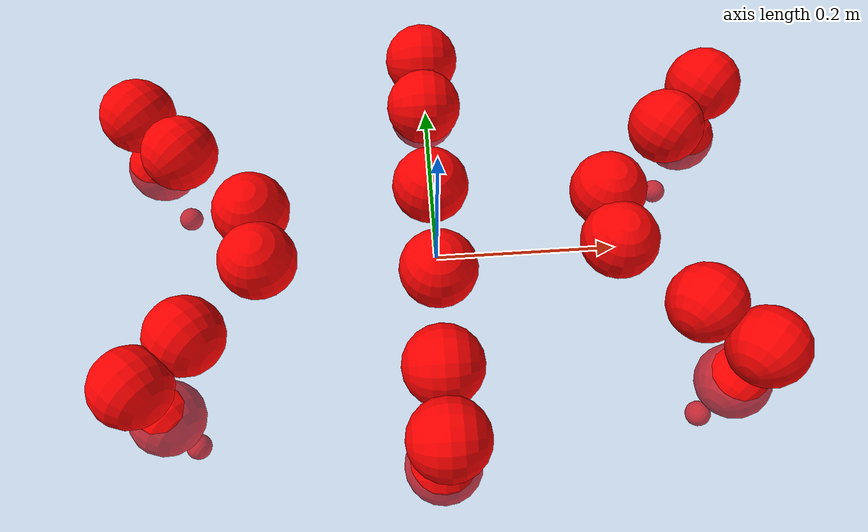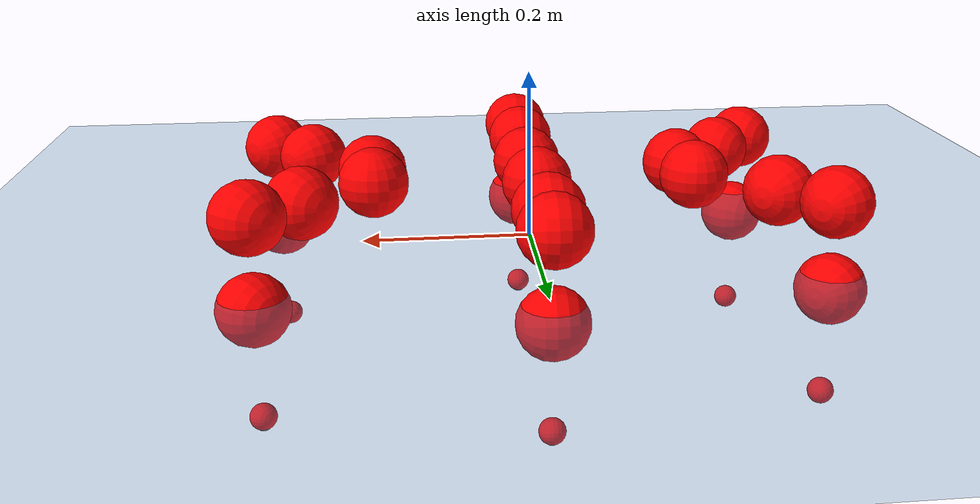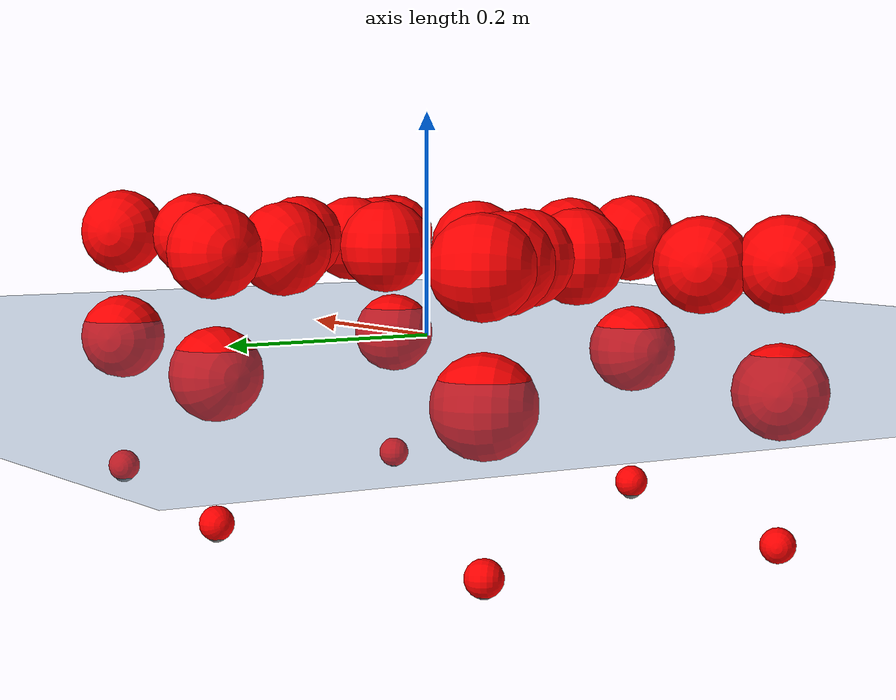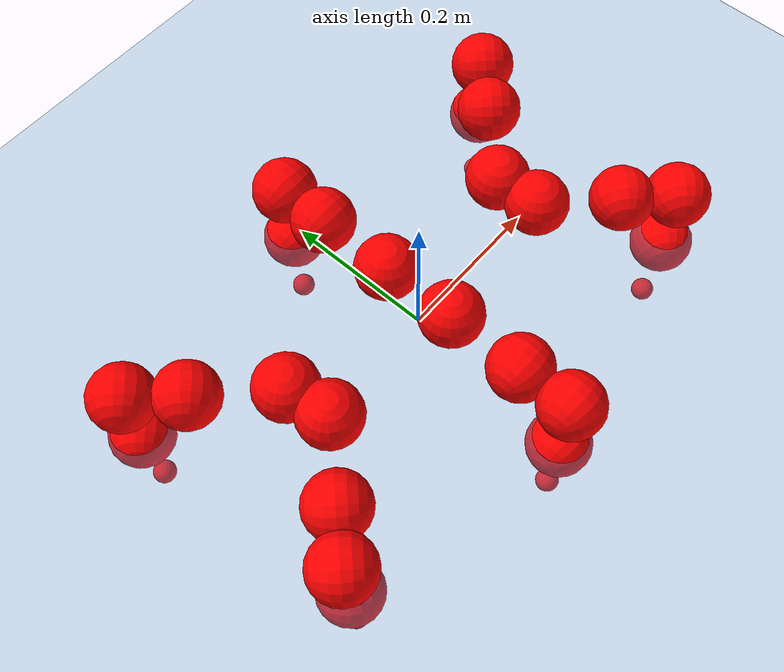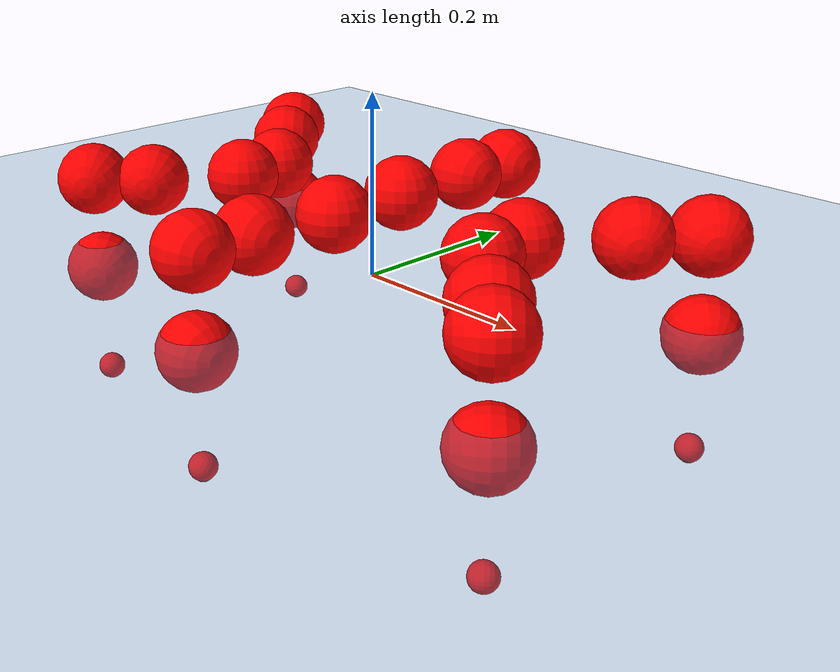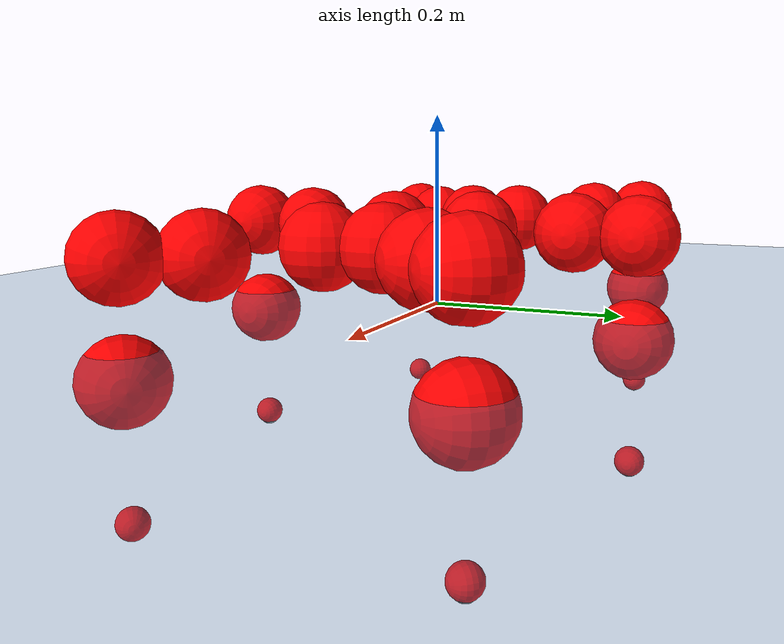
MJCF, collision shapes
<mujoco model="Golem">
  <compiler angle="radian" assetdir="assets" balanceinertia="true" inertiafromgeom="false"/>

  <option timestep="0.005" density="1.2" viscosity="2e-05"/>

  <size nkey="1"/>

  <visual>
    <quality shadowsize="8192"/>
    <map shadowclip="0.5"/>
  </visual>

  <default>
    <default class="/">
      <joint armature="0.01" damping="0.01" frictionloss="0.01"/>
      <geom contype="0" conaffinity="0" group="1" solref="-1000 -80"/>
      <site size="0.01 0.005 0.005" group="5"/>
      <general forcelimited="true" biastype="affine" gainprm="25" biasprm="0 -25 -0.5"/>
      <default class="visual">
        <geom type="mesh" group="2"/>
      </default>
      <default class="collision">
        <geom group="3"/>
      </default>
      <default class="foot">
        <geom size="0.01 0 0" condim="6" group="4" priority="1" solimp="0.015 1 0.01"/>
      </default>
      <default class="reward_collision_sphere">
        <geom group="5" rgba="1 0 0 1"/>
      </default>
    </default>
  </default>

  <asset>
    <texture type="skybox" colorspace="auto" name="//unnamed_texture_0" builtin="gradient" rgb1="0.95 0.95 0.95" rgb2="0.95 0.95 0.95" width="100" height="600"/>
    <texture type="2d" colorspace="auto" name="texplane" builtin="checker" rgb1="0.345 0.575 0.748" rgb2="0.345 0.575 0.748" markrgb="1 1 1" width="512" height="512"/>
    <material name="MatPlane" class="/" texture="texplane" texuniform="true" texrepeat="2 2" specular="0.9"/>
    <mesh name="body" class="/" file="body.stl" scale="0.001 0.001 0.001"/>
    <mesh name="coxa" class="/" file="coxa.stl" scale="0.001 0.001 0.001"/>
    <mesh name="femur" class="/" file="femur.stl" scale="0.001 0.001 0.001"/>
    <mesh name="tibia" class="/" file="tibia.stl" scale="0.001 0.001 0.001"/>
    <mesh name="tarsus" class="/" file="tarsus.stl" scale="0.001 0.001 0.001"/>
  </asset>

  <worldbody>
    <geom name="floor" class="/" size="100 100 0.125" type="plane" group="0" material="MatPlane"/>
    <light name="toplight_shadow" class="/" pos="0 0 5" dir="0.0990148 0.0990148 -0.990148" type="directional" ambient="0.04 0.04 0.04" diffuse="0.55 0.55 0.55" specular="0.12 0.12 0.12"/>
    <light name="toplight_fill" class="/" pos="0 0 5" dir="0.0990148 0.0990148 -0.990148" type="directional" castshadow="false" ambient="0.04 0.04 0.04" diffuse="0.3 0.3 0.3" specular="0.08 0.08 0.08"/>
    <body name="trunk" pos="-0.00276485 -0.000514237 0.000746657" quat="1 0.000195872 2.85938e-06 0.000323011">
      <inertial pos="0.00307842 -0.000325015 -0.00138978" quat="0.999956 0.00354685 -0.00490308 0.00714437" mass="3.92016" diaginertia="0.023883 0.00112295 0.0269203"/>
      <joint name="//unnamed_joint_0" type="free"/>
      <geom name="//unnamed_geom_1" class="/" pos="0 0 0.0776015" quat="1 0 0 0" type="mesh" rgba="0.9 0.9 0.9 1" mesh="body"/>
      <site name="imu" class="/" pos="0.152289 0.000496619 0.132073" size="0.0101457"/>
      <camera name="track" class="/" pos="0 -1.28709 0" quat="0.707107 0.707107 0 0" mode="trackcom"/>
      <camera name="ego_camera" class="/" pos="0.154395 0 0.121252" quat="-0.5 -0.5 0.5 0.5"/>
      <body name="coxa_RR" pos="-0.207254 -0.0544154 0.0774394" quat="0.382547 0.000122018 -0.00016678 -0.923936">
        <inertial pos="0.000638028 0.000542896 0.000356619" quat="0.999973 0.00257352 -0.00360641 0.00587491" mass="0.2141" diaginertia="0.0235448 0.0011365 0.0276269"/>
        <joint name="coxa_joint_RR" class="/" pos="0 0 0" axis="-0.00992278 0.00533645 -0.999937" stiffness="0.00271872" range="-3.13506 3.0959" armature="0.00879869" damping="0.00470357" frictionloss="0.0103194"/>
        <geom name="//unnamed_geom_2" class="/" type="mesh" rgba="0.2 0.2 0.2 1" mesh="coxa"/>
        <geom name="//unnamed_geom_3" class="reward_collision_sphere" size="0.040583" pos="-0.0356296 0 0"/>
        <body name="femur_RR" pos="0.0672066 0.0036681 -0.00579535" quat="0.500266 -0.499351 0.499828 0.500554">
          <inertial pos="-0.00199451 0.00231634 -0.00270002" quat="0.999998 0.000599212 0.00188429 -0.000183679" mass="0.211839" diaginertia="0.0238574 0.00109791 0.0261714"/>
          <joint name="femur_joint_RR" class="/" pos="0 0 0" axis="-0.000166601 0.000893945 -1" range="-3.10013 3.13683" armature="0.00911632" damping="0.0212619" frictionloss="0.0111389"/>
          <geom name="//unnamed_geom_4" class="/" type="mesh" rgba="0.9 0.9 0.9 1" mesh="femur"/>
          <geom name="//unnamed_geom_5" class="reward_collision_sphere" size="0.040583"/>
          <body name="tibia_RR" pos="-0.00137414 -0.0676796 0.00222545" quat="0.000301813 0.999999 0.0011833 -8.58495e-05">
            <inertial pos="-0.000695999 -0.00209635 0.000206972" quat="0.999965 0.00746994 -0.00264767 0.00262095" mass="0.209365" diaginertia="0.0228386 0.00109196 0.0256652"/>
            <joint name="tibia_joint_RR" class="/" pos="0 0 0" axis="0.000793822 -0.0128343 0.999917" stiffness="0.0103639" range="-3.13155 3.08338" armature="0.00932662" damping="0.0019637" frictionloss="0.0101223"/>
            <geom name="//unnamed_geom_6" class="/" type="mesh" rgba="0.2 0.2 0.2 1" mesh="tibia"/>
            <geom name="//unnamed_geom_7" class="reward_collision_sphere" size="0.040583"/>
            <body name="tarsus_RR" pos="0.105618 -0.00236427 -0.00318419" quat="1 -0.000808109 0.000382145 -0.000338146">
              <inertial pos="0.0733752 0.000479977 -0.00173971" quat="0.494245 0.50601 0.492417 0.507149" mass="0.209687" diaginertia="0.0242167 0.00115601 0.0267081"/>
              <joint name="tarsus_joint_RR" class="/" pos="0 0 0" axis="0.00450944 -0.00247198 0.999987" stiffness="0.0105447" range="-3.12801 3.14202" armature="0.0111292" damping="0.0147012" frictionloss="0.0108791"/>
              <geom name="//unnamed_geom_8" class="/" type="mesh" rgba="0.9 0.9 0.9 1" mesh="tarsus"/>
              <geom name="foot_1" class="foot" size="0.0092158" pos="0.133017 0 0" quat="0 -0.707107 0 0.707107"/>
              <geom name="//unnamed_geom_10" class="reward_collision_sphere" size="0.040583"/>
              <geom name="//unnamed_geom_11" class="reward_collision_sphere" size="0.0152186" pos="0.127673 0 0"/>
              <site name="foot_1" class="foot" pos="0.133017 0 0" quat="0 -0.707107 0 0.707107" size="0.0101457"/>
            </body>
          </body>
        </body>
      </body>
      <body name="coxa_RM" pos="0.000851458 -0.0866971 0.0789933" quat="0.707212 0.000549322 -4.38057e-05 -0.707001">
        <inertial pos="-0.000614916 0.000191255 -0.00236723" quat="0.999996 0.000868517 -0.00239455 -0.0013949" mass="0.202514" diaginertia="0.0237521 0.00107797 0.024868"/>
        <joint name="coxa_joint_RM" class="/" pos="0 0 0" axis="0.00160748 0.00316887 -0.999994" range="-3.11417 3.14325" armature="0.00872399" damping="0.0239075" frictionloss="0.0102705"/>
        <geom name="//unnamed_geom_12" class="/" type="mesh" rgba="0.2 0.2 0.2 1" mesh="coxa"/>
        <geom name="//unnamed_geom_13" class="reward_collision_sphere" size="0.040583" pos="-0.0356296 0 0"/>
        <body name="femur_RM" pos="0.0678012 -0.00286403 0.00181421" quat="0.500094 -0.50009 0.499823 0.499993">
          <inertial pos="0.00249536 -0.00299691 0.00248729" quat="0.999996 0.00219848 0.00126363 -0.00143064" mass="0.213557" diaginertia="0.0240326 0.00110093 0.0267569"/>
          <joint name="femur_joint_RM" class="/" pos="0 0 0" axis="0.00428554 0.000468699 -0.999991" stiffness="0.00437584" range="-3.12116 3.1452" armature="0.0104381" damping="0.0067665" frictionloss="0.0087649"/>
          <geom name="//unnamed_geom_14" class="/" type="mesh" rgba="0.9 0.9 0.9 1" mesh="femur"/>
          <geom name="//unnamed_geom_15" class="reward_collision_sphere" size="0.040583"/>
          <body name="tibia_RM" pos="-0.00112382 -0.0712214 -0.000216085" quat="4.51725e-05 1 -0.000388108 -0.000263149">
            <inertial pos="-0.00304665 -0.00180439 -0.000829748" quat="0.999964 0.00671623 -0.000369643 0.00508592" mass="0.206629" diaginertia="0.0231692 0.00109951 0.0268603"/>
            <joint name="tibia_joint_RM" class="/" pos="0 0 0" axis="-0.0120372 0.00291292 0.999923" range="-3.09928 3.17861" armature="0.0114906" damping="0.0108536" frictionloss="0.00979264"/>
            <geom name="//unnamed_geom_16" class="/" type="mesh" rgba="0.2 0.2 0.2 1" mesh="tibia"/>
            <geom name="//unnamed_geom_17" class="reward_collision_sphere" size="0.040583"/>
            <body name="tarsus_RM" pos="0.105087 0.000135931 0.00327513" quat="1 -0.000391745 -0.000247542 0.000785454">
              <inertial pos="0.0740466 -0.000754883 0.00308552" quat="0.500623 0.500136 0.50007 0.49917" mass="0.207196" diaginertia="0.0231812 0.00109885 0.0247118"/>
              <joint name="tarsus_joint_RM" class="/" pos="0 0 0" axis="-0.0132896 -0.00305342 0.999907" range="-3.12045 3.11113" armature="0.0114823" damping="0.0169455" frictionloss="0.0101556"/>
              <geom name="//unnamed_geom_18" class="/" type="mesh" rgba="0.9 0.9 0.9 1" mesh="tarsus"/>
              <geom name="foot_2" class="foot" size="0.0112048" pos="0.133017 0 0" quat="0 -0.707107 0 0.707107"/>
              <geom name="//unnamed_geom_20" class="reward_collision_sphere" size="0.040583"/>
              <geom name="//unnamed_geom_21" class="reward_collision_sphere" size="0.0152186" pos="0.127673 0 0"/>
              <site name="foot_2" class="foot" pos="0.133017 0 0" quat="0 -0.707107 0 0.707107" size="0.0101457"/>
            </body>
          </body>
        </body>
      </body>
      <body name="coxa_RF" pos="0.213773 -0.0564867 0.0792285" quat="0.923968 -0.000224734 -0.00100301 -0.382468">
        <inertial pos="-0.000349875 0.00189917 0.00118605" quat="0.999917 0.000290772 0.00295467 -0.0124996" mass="0.210002" diaginertia="0.0223988 0.00110436 0.0248824"/>
        <joint name="coxa_joint_RF" class="/" pos="0 0 0" axis="0.00892666 -0.000113049 -0.99996" range="-3.1888 3.14341" armature="0.00939244" damping="0.0210523" frictionloss="0.0113494"/>
        <geom name="//unnamed_geom_22" class="/" type="mesh" rgba="0.2 0.2 0.2 1" mesh="coxa"/>
        <geom name="//unnamed_geom_23" class="reward_collision_sphere" size="0.040583" pos="-0.0356296 0 0"/>
        <body name="femur_RF" pos="0.0698007 0.000415443 -0.00271975" quat="0.500149 -0.500035 0.500064 0.499751">
          <inertial pos="-0.000660889 -0.00296198 0.00038843" quat="0.999998 -0.00130549 0.000396987 0.00154682" mass="0.210536" diaginertia="0.0239706 0.00109088 0.0258658"/>
          <joint name="femur_joint_RF" class="/" pos="0 0 0" axis="-0.000419708 -0.00212311 -0.999998" stiffness="0.00896341" range="-3.08467 3.14396" armature="0.0109982" damping="0" frictionloss="0.0107892"/>
          <geom name="//unnamed_geom_24" class="/" type="mesh" rgba="0.9 0.9 0.9 1" mesh="femur"/>
          <geom name="//unnamed_geom_25" class="reward_collision_sphere" size="0.040583"/>
          <body name="tibia_RF" pos="-0.000262492 -0.069764 -0.000854485" quat="1.72515e-05 1 0.000289208 -0.000109557">
            <inertial pos="0.000219213 -0.00149826 -0.000304189" quat="0.999994 0.00199979 -0.00274876 -0.000809752" mass="0.202628" diaginertia="0.0225419 0.00107286 0.0253802"/>
            <joint name="tibia_joint_RF" class="/" pos="0 0 0" axis="0.00973403 -0.00905512 0.999912" range="-3.09338 3.12769" armature="0.00984672" damping="0.000551296" frictionloss="0.0114246"/>
            <geom name="//unnamed_geom_26" class="/" type="mesh" rgba="0.2 0.2 0.2 1" mesh="tibia"/>
            <geom name="//unnamed_geom_27" class="reward_collision_sphere" size="0.040583"/>
            <body name="tarsus_RF" pos="0.104829 0.000147058 -0.000220011" quat="1 -4.18377e-05 -1.59405e-05 -0.00094703">
              <inertial pos="0.070963 -0.00258078 0.00103561" quat="0.496331 0.506612 0.501382 0.495596" mass="0.205825" diaginertia="0.0228788 0.0010927 0.0255883"/>
              <joint name="tarsus_joint_RF" class="/" pos="0 0 0" axis="0.0117801 0.00613901 0.999912" range="-3.17908 3.14619" armature="0.0104955" damping="0" frictionloss="0.00975861"/>
              <geom name="//unnamed_geom_28" class="/" type="mesh" rgba="0.9 0.9 0.9 1" mesh="tarsus"/>
              <geom name="foot_3" class="foot" size="0.010304" pos="0.133017 0 0" quat="0 -0.707107 0 0.707107"/>
              <geom name="//unnamed_geom_30" class="reward_collision_sphere" size="0.040583"/>
              <geom name="//unnamed_geom_31" class="reward_collision_sphere" size="0.0152186" pos="0.127673 0 0"/>
              <site name="foot_3" class="foot" pos="0.133017 0 0" quat="0 -0.707107 0 0.707107" size="0.0101457"/>
            </body>
          </body>
        </body>
      </body>
      <body name="coxa_LR" pos="-0.215464 0.0545698 0.0780343" quat="0.383282 -0.000785414 0.000202915 0.923631">
        <inertial pos="0.00299363 -0.0004162 0.000822904" quat="0.999996 0.00263469 0.000182303 -0.000581631" mass="0.203868" diaginertia="0.0239473 0.0011296 0.0262603"/>
        <joint name="coxa_joint_LR" class="/" pos="0 0 0" axis="0.0193994 0.00239631 -0.999809" stiffness="0.0117711" range="-3.12203 3.19326" armature="0.0108698" damping="0.0042648" frictionloss="0.0114886"/>
        <geom name="//unnamed_geom_32" class="/" type="mesh" rgba="0.2 0.2 0.2 1" mesh="coxa"/>
        <geom name="//unnamed_geom_33" class="reward_collision_sphere" size="0.040583" pos="-0.0356296 0 0"/>
        <body name="femur_LR" pos="0.0742241 0.00196525 0.00150197" quat="0.499829 -0.500744 0.49969 0.499736">
          <inertial pos="-0.000726141 0.000320392 -0.000294714" quat="1 -4.83349e-05 -0.000776436 -0.000227985" mass="0.215344" diaginertia="0.0252408 0.00114576 0.0262256"/>
          <joint name="femur_joint_LR" class="/" pos="0 0 0" axis="0.00129973 0.00352753 0.999993" range="-3.17898 3.10689" armature="0.00906768" damping="0" frictionloss="0.00969104"/>
          <geom name="//unnamed_geom_34" class="/" type="mesh" rgba="0.9 0.9 0.9 1" mesh="femur"/>
          <geom name="//unnamed_geom_35" class="reward_collision_sphere" size="0.040583"/>
          <body name="tibia_LR" pos="-0.00108747 -0.0714601 -0.00216565" quat="-0.000165002 1 -0.000177911 6.92599e-05">
            <inertial pos="0.000353459 0.000317835 0.000350922" quat="0.999909 -0.0104543 -0.0084734 -0.000478207" mass="0.19996" diaginertia="0.0223643 0.00111292 0.0258319"/>
            <joint name="tibia_joint_LR" class="/" pos="0 0 0" axis="-0.000397506 -8.04793e-05 -1" stiffness="0.00467773" range="-3.14178 3.13284" armature="0.0103204" damping="0.01855" frictionloss="0.0111621"/>
            <geom name="//unnamed_geom_36" class="/" type="mesh" rgba="0.2 0.2 0.2 1" mesh="tibia"/>
            <geom name="//unnamed_geom_37" class="reward_collision_sphere" size="0.040583"/>
            <body name="tarsus_LR" pos="0.102499 0.00024928 -0.00197682" quat="0.999999 0.000333254 0.000865482 0.000544446">
              <inertial pos="0.0674948 0.00328241 -0.00146794" quat="0.501049 0.498597 0.502621 0.497718" mass="0.20254" diaginertia="0.0232983 0.0011358 0.0267898"/>
              <joint name="tarsus_joint_LR" class="/" pos="0 0 0" axis="-0.0015357 0.000175507 -0.999999" range="-3.17124 3.13517" armature="0.00965916" damping="0.0317402" frictionloss="0.0105783"/>
              <geom name="//unnamed_geom_38" class="/" type="mesh" rgba="0.9 0.9 0.9 1" mesh="tarsus"/>
              <geom name="foot_4" class="foot" size="0.0104314" pos="0.133017 0 0" quat="0.707107 0 -0.707107 0"/>
              <geom name="//unnamed_geom_40" class="reward_collision_sphere" size="0.040583"/>
              <geom name="//unnamed_geom_41" class="reward_collision_sphere" size="0.0152186" pos="0.127673 0 0"/>
              <site name="foot_4" class="foot" pos="0.133017 0 0" quat="0.707107 0 -0.707107 0" size="0.0101457"/>
            </body>
          </body>
        </body>
      </body>
      <body name="coxa_LM" pos="-0.00104217 0.0819457 0.080778" quat="0.70693 7.84784e-06 -0.000494132 0.707283">
        <inertial pos="0.00259123 0.00275829 0.00315807" quat="0.999911 -0.0108494 -0.00596879 -0.0050489" mass="0.207733" diaginertia="0.0240836 0.00107174 0.0271049"/>
        <joint name="coxa_joint_LM" class="/" pos="0 0 0" axis="7.49873e-06 4.35818e-06 -1" range="-3.08316 3.11479" armature="0.0102139" damping="0.00656653" frictionloss="0.0105313"/>
        <geom name="//unnamed_geom_42" class="/" type="mesh" rgba="0.2 0.2 0.2 1" mesh="coxa"/>
        <geom name="//unnamed_geom_43" class="reward_collision_sphere" size="0.040583" pos="-0.0356296 0 0"/>
        <body name="femur_LM" pos="0.0668833 0.000589556 0.000341866" quat="0.499762 -0.500247 0.499974 0.500017">
          <inertial pos="0.00172089 -0.00118442 -0.00203386" quat="0.999989 -0.00223658 -0.000259804 0.00419239" mass="0.211308" diaginertia="0.0234833 0.00112532 0.0270894"/>
          <joint name="femur_joint_LM" class="/" pos="0 0 0" axis="0.00768886 -0.000667344 0.99997" range="-3.13737 3.13962" armature="0.0113512" damping="0.0146618" frictionloss="0.0111623"/>
          <geom name="//unnamed_geom_44" class="/" type="mesh" rgba="0.9 0.9 0.9 1" mesh="femur"/>
          <geom name="//unnamed_geom_45" class="reward_collision_sphere" size="0.040583"/>
          <body name="tibia_LM" pos="0.000584602 -0.0661728 -0.00155206" quat="-0.000721002 0.999999 -0.000750355 -0.000833638">
            <inertial pos="0.00219941 0.00225516 -0.00102172" quat="0.999909 0.0108916 0.00674328 0.00420289" mass="0.222762" diaginertia="0.0246207 0.00115473 0.0278502"/>
            <joint name="tibia_joint_LM" class="/" pos="0 0 0" axis="-0.00891294 0.0059385 -0.999943" stiffness="0.0105426" range="-3.12458 3.13126" armature="0.0100221" damping="0.011504" frictionloss="0.0106378"/>
            <geom name="//unnamed_geom_46" class="/" type="mesh" rgba="0.2 0.2 0.2 1" mesh="tibia"/>
            <geom name="//unnamed_geom_47" class="reward_collision_sphere" size="0.040583"/>
            <body name="tarsus_LM" pos="0.103863 -0.00191073 0.00069698" quat="1 -6.01608e-05 -1.63372e-05 8.5486e-05">
              <inertial pos="0.0711173 0.000935452 0.00119518" quat="0.495419 0.504571 0.508365 0.49146" mass="0.202326" diaginertia="0.0240132 0.00112411 0.02647"/>
              <joint name="tarsus_joint_LM" class="/" pos="0 0 0" axis="-0.000550585 -3.55981e-05 -1" range="-3.19328 3.11848" armature="0.00998085" damping="0.0184356" frictionloss="0.0102236"/>
              <geom name="//unnamed_geom_48" class="/" type="mesh" rgba="0.9 0.9 0.9 1" mesh="tarsus"/>
              <geom name="foot_5" class="foot" size="0.0107939" pos="0.133017 0 0" quat="0.707107 0 -0.707107 0"/>
              <geom name="//unnamed_geom_50" class="reward_collision_sphere" size="0.040583"/>
              <geom name="//unnamed_geom_51" class="reward_collision_sphere" size="0.0152186" pos="0.127673 0 0"/>
              <site name="foot_5" class="foot" pos="0.133017 0 0" quat="0.707107 0 -0.707107 0" size="0.0101457"/>
            </body>
          </body>
        </body>
      </body>
      <body name="coxa_LF" pos="0.21116 0.0532375 0.0805315" quat="0.923908 -0.000110524 -8.87039e-05 0.382615">
        <inertial pos="0.000125011 -0.000623589 0.00140935" quat="0.999936 0.000173032 -0.00770496 -0.00822239" mass="0.201821" diaginertia="0.0234718 0.0010937 0.0251549"/>
        <joint name="coxa_joint_LF" class="/" pos="0 0 0" axis="0.00517843 -0.00240305 -0.999984" range="-3.11033 3.14646" armature="0.01032" damping="0.0319461" frictionloss="0.00960732"/>
        <geom name="//unnamed_geom_52" class="/" type="mesh" rgba="0.2 0.2 0.2 1" mesh="coxa"/>
        <geom name="//unnamed_geom_53" class="reward_collision_sphere" size="0.040583" pos="-0.0356296 0 0"/>
        <body name="femur_LF" pos="0.0712405 -0.000589137 0.00238915" quat="0.500302 -0.499659 0.499064 0.500974">
          <inertial pos="0.000136708 -0.000533919 -7.7168e-05" quat="0.999949 -0.00288289 0.00810097 -0.00521837" mass="0.202782" diaginertia="0.0231201 0.00107077 0.0262642"/>
          <joint name="femur_joint_LF" class="/" pos="0 0 0" axis="0.00889677 -0.00207965 0.999958" range="-3.12983 3.13182" armature="0.010391" damping="0" frictionloss="0.010395"/>
          <geom name="//unnamed_geom_54" class="/" type="mesh" rgba="0.9 0.9 0.9 1" mesh="femur"/>
          <geom name="//unnamed_geom_55" class="reward_collision_sphere" size="0.040583"/>
          <body name="tibia_LF" pos="-0.00277704 -0.072848 0.000554072" quat="-3.01608e-05 1 0.000263602 0.000225961">
            <inertial pos="0.0015012 -0.00275846 -0.00076087" quat="0.999998 0.000153831 0.00210959 0.000278891" mass="0.206682" diaginertia="0.0246904 0.00109666 0.0261411"/>
            <joint name="tibia_joint_LF" class="/" pos="0 0 0" axis="0.00145748 -0.00036477 -0.999999" range="-3.17542 3.19371" armature="0.00985776" damping="0.00144792" frictionloss="0.0101595"/>
            <geom name="//unnamed_geom_56" class="/" type="mesh" rgba="0.2 0.2 0.2 1" mesh="tibia"/>
            <geom name="//unnamed_geom_57" class="reward_collision_sphere" size="0.040583"/>
            <body name="tarsus_LF" pos="0.103068 0.00157288 0.001207" quat="0.999999 -0.00135446 -5.49201e-05 0.000226746">
              <inertial pos="0.072258 -0.00180589 -0.00116577" quat="0.499472 0.50117 0.499546 0.499809" mass="0.198075" diaginertia="0.0223762 0.00104771 0.0254071"/>
              <joint name="tarsus_joint_LF" class="/" pos="0 0 0" axis="0.00329057 -0.000634523 -0.999994" stiffness="0.00318334" range="-3.14044 3.11724" armature="0.0103442" damping="0.0313938" frictionloss="0.00940599"/>
              <geom name="//unnamed_geom_58" class="/" type="mesh" rgba="0.9 0.9 0.9 1" mesh="tarsus"/>
              <geom name="foot_6" class="foot" size="0.0111697" pos="0.133017 0 0" quat="0.707107 0 -0.707107 0"/>
              <geom name="//unnamed_geom_60" class="reward_collision_sphere" size="0.040583"/>
              <geom name="//unnamed_geom_61" class="reward_collision_sphere" size="0.0152186" pos="0.127673 0 0"/>
              <site name="foot_6" class="foot" pos="0.133017 0 0" quat="0.707107 0 -0.707107 0" size="0.0101457"/>
            </body>
          </body>
        </body>
      </body>
    </body>
  </worldbody>

  <contact>
    <pair class="/" geom1="floor" geom2="foot_1" name="//unnamed_contact_0"/>
    <pair class="/" geom1="floor" geom2="foot_2" name="//unnamed_contact_1"/>
    <pair class="/" geom1="floor" geom2="foot_3" name="//unnamed_contact_2"/>
    <pair class="/" geom1="floor" geom2="foot_4" name="//unnamed_contact_3"/>
    <pair class="/" geom1="floor" geom2="foot_5" name="//unnamed_contact_4"/>
    <pair class="/" geom1="floor" geom2="foot_6" name="//unnamed_contact_5"/>
  </contact>

  <actuator>
    <general name="coxa_joint_RR" class="/" joint="coxa_joint_RR" forcerange="-8.05878 8.05878" gainprm="24.6399" biasprm="0 -24.6399 -0.531137"/>
    <general name="femur_joint_RR" class="/" joint="femur_joint_RR" forcerange="-7.88457 7.88457" gainprm="24.6399" biasprm="0 -24.6399 -0.531137"/>
    <general name="tibia_joint_RR" class="/" joint="tibia_joint_RR" forcerange="-6.98845 6.98845" gainprm="24.6399" biasprm="0 -24.6399 -0.531137"/>
    <general name="tarsus_joint_RR" class="/" joint="tarsus_joint_RR" forcerange="-7.10999 7.10999" gainprm="24.6399" biasprm="0 -24.6399 -0.531137"/>
    <general name="coxa_joint_RM" class="/" joint="coxa_joint_RM" forcerange="-7.43465 7.43465" gainprm="24.6399" biasprm="0 -24.6399 -0.531137"/>
    <general name="femur_joint_RM" class="/" joint="femur_joint_RM" forcerange="-7.76182 7.76182" gainprm="24.6399" biasprm="0 -24.6399 -0.531137"/>
    <general name="tibia_joint_RM" class="/" joint="tibia_joint_RM" forcerange="-7.62299 7.62299" gainprm="24.6399" biasprm="0 -24.6399 -0.531137"/>
    <general name="tarsus_joint_RM" class="/" joint="tarsus_joint_RM" forcerange="-7.62242 7.62242" gainprm="24.6399" biasprm="0 -24.6399 -0.531137"/>
    <general name="coxa_joint_RF" class="/" joint="coxa_joint_RF" forcerange="-7.3857 7.3857" gainprm="24.6399" biasprm="0 -24.6399 -0.531137"/>
    <general name="femur_joint_RF" class="/" joint="femur_joint_RF" forcerange="-6.94244 6.94244" gainprm="24.6399" biasprm="0 -24.6399 -0.531137"/>
    <general name="tibia_joint_RF" class="/" joint="tibia_joint_RF" forcerange="-7.31402 7.31402" gainprm="24.6399" biasprm="0 -24.6399 -0.531137"/>
    <general name="tarsus_joint_RF" class="/" joint="tarsus_joint_RF" forcerange="-7.4719 7.4719" gainprm="24.6399" biasprm="0 -24.6399 -0.531137"/>
    <general name="coxa_joint_LR" class="/" joint="coxa_joint_LR" forcerange="-7.53666 7.53666" gainprm="24.6399" biasprm="0 -24.6399 -0.531137"/>
    <general name="femur_joint_LR" class="/" joint="femur_joint_LR" forcerange="-7.17339 7.17339" gainprm="24.6399" biasprm="0 -24.6399 -0.531137"/>
    <general name="tibia_joint_LR" class="/" joint="tibia_joint_LR" forcerange="-7.0342 7.0342" gainprm="24.6399" biasprm="0 -24.6399 -0.531137"/>
    <general name="tarsus_joint_LR" class="/" joint="tarsus_joint_LR" forcerange="-7.31363 7.31363" gainprm="24.6399" biasprm="0 -24.6399 -0.531137"/>
    <general name="coxa_joint_LM" class="/" joint="coxa_joint_LM" forcerange="-7.20727 7.20727" gainprm="24.6399" biasprm="0 -24.6399 -0.531137"/>
    <general name="femur_joint_LM" class="/" joint="femur_joint_LM" forcerange="-7.35232 7.35232" gainprm="24.6399" biasprm="0 -24.6399 -0.531137"/>
    <general name="tibia_joint_LM" class="/" joint="tibia_joint_LM" forcerange="-7.33541 7.33541" gainprm="24.6399" biasprm="0 -24.6399 -0.531137"/>
    <general name="tarsus_joint_LM" class="/" joint="tarsus_joint_LM" forcerange="-6.64125 6.64125" gainprm="24.6399" biasprm="0 -24.6399 -0.531137"/>
    <general name="coxa_joint_LF" class="/" joint="coxa_joint_LF" forcerange="-7.33137 7.33137" gainprm="24.6399" biasprm="0 -24.6399 -0.531137"/>
    <general name="femur_joint_LF" class="/" joint="femur_joint_LF" forcerange="-7.52732 7.52732" gainprm="24.6399" biasprm="0 -24.6399 -0.531137"/>
    <general name="tibia_joint_LF" class="/" joint="tibia_joint_LF" forcerange="-7.66302 7.66302" gainprm="24.6399" biasprm="0 -24.6399 -0.531137"/>
    <general name="tarsus_joint_LF" class="/" joint="tarsus_joint_LF" forcerange="-7.41829 7.41829" gainprm="24.6399" biasprm="0 -24.6399 -0.531137"/>
  </actuator>

  <sensor>
    <gyro site="imu" name="imu_angular_velocity"/>
    <velocimeter site="imu" name="imu_linear_velocity"/>
    <framelinvel objtype="site" objname="foot_1" name="foot_1_global_linear_velocity"/>
    <framelinvel objtype="site" objname="foot_2" name="foot_2_global_linear_velocity"/>
    <framelinvel objtype="site" objname="foot_3" name="foot_3_global_linear_velocity"/>
    <framelinvel objtype="site" objname="foot_4" name="foot_4_global_linear_velocity"/>
    <framelinvel objtype="site" objname="foot_5" name="foot_5_global_linear_velocity"/>
    <framelinvel objtype="site" objname="foot_6" name="foot_6_global_linear_velocity"/>
  </sensor>

  <keyframe>
    <key name="home" qpos="0 0 0.1457 1 0 0 0 0 0 0 0 0 0 0 0 0 0 0 0 0 0 0 0 0 0 0 0 0 0 0 0"/>
  </keyframe>
</mujoco>
